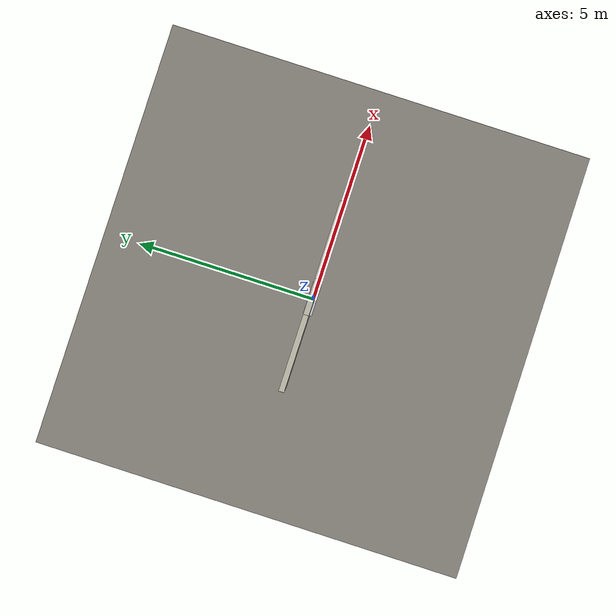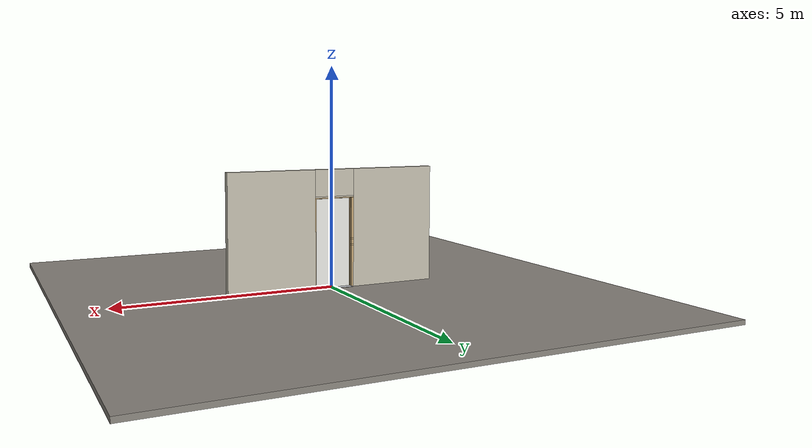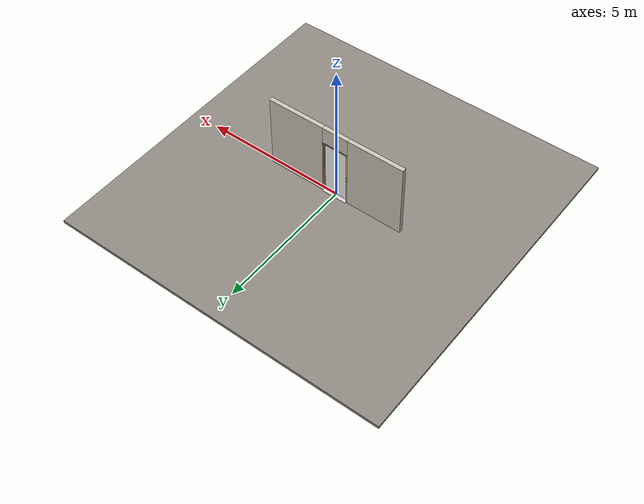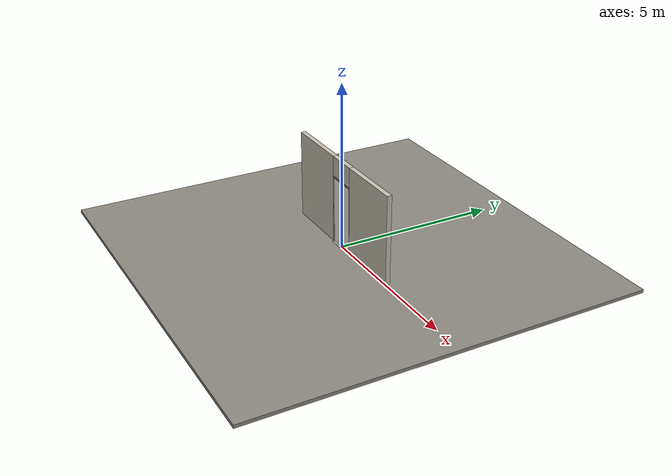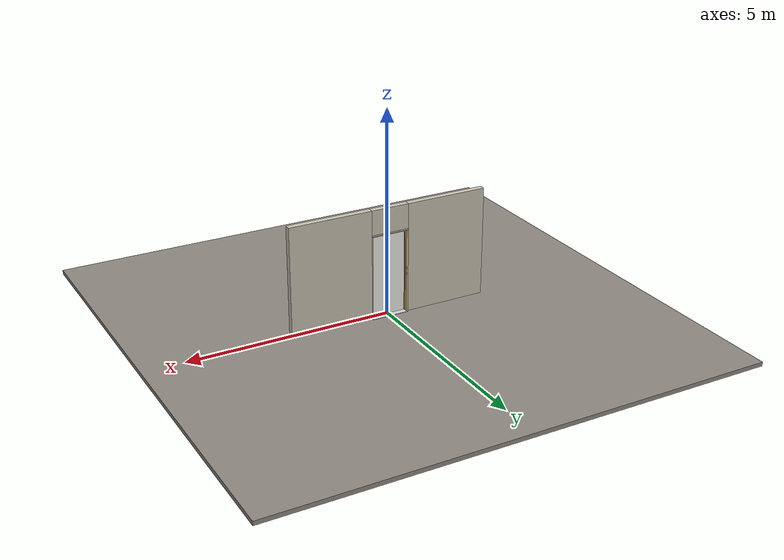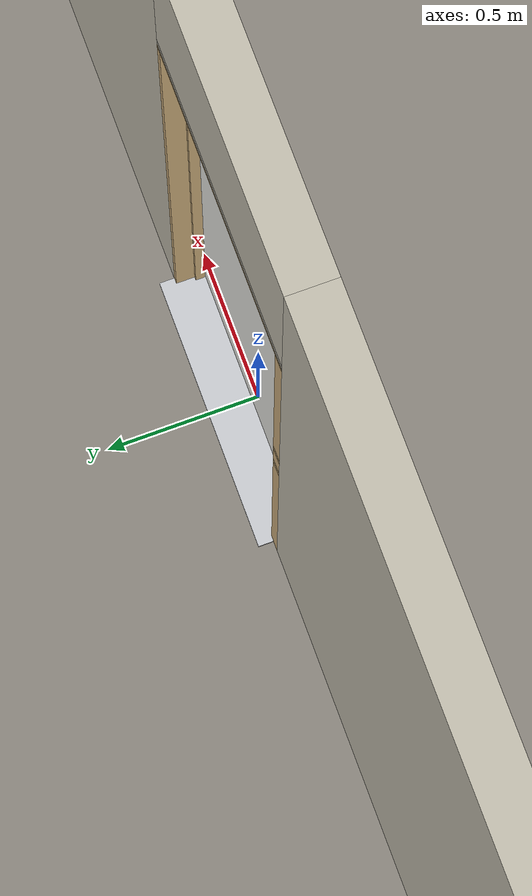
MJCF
<?xml version="1.0" ?>
<mujoco model="db0955_swing_single_minimal">
  <compiler angle="radian" meshdir="../../hardware" texturedir="../../textures" autolimits="true" inertiafromgeom="false"/>
  <option timestep="0.002" integrator="implicitfast" cone="elliptic" impratio="10" noslip_iterations="3">
    <flag multiccd="enable"/>
  </option>
  <size memory="16M"/>
  <default>
    <geom condim="4" solref="0.005 1" solimp="0.95 0.99 0.001"/>
    <joint solreflimit="0.005 1" solimplimit="0.95 0.99 0.001"/>
    <tendon solreflimit="0.005 1"/>
    <equality solref="0.002 1"/>
  </default>
  <visual>
    <headlight ambient="0.4 0.4 0.4" diffuse="0.7 0.7 0.7" specular="0.2 0.2 0.2"/>
    <quality shadowsize="4096"/>
    <map znear="0.01" zfar="60"/>
  </visual>
  <asset>
    <material name="mat_floor" rgba="0.55 0.53 0.5 1" specular="0.2" shininess="0.15" reflectance="0"/>
    <material name="mat_wall" rgba="0.78 0.76 0.7 1" specular="0.2" shininess="0.1" reflectance="0"/>
    <material name="mat_leaf" rgba="0.93 0.93 0.91 1" specular="0.2" shininess="0.6" reflectance="0"/>
    <material name="mat_leaf_brace" rgba="0.837 0.837 0.819 1" specular="0.2" shininess="0.2" reflectance="0"/>
    <material name="mat_hinge" rgba="0.65 0.66 0.68 1" specular="0.74" shininess="0.5" reflectance="0.36"/>
    <material name="mat_op_nickel_satin" rgba="0.72 0.7 0.66 1" specular="0.8" shininess="0.65" reflectance="0.4"/>
    <material name="mat_trim" rgba="0.85 0.66 0.3 1" specular="0.8" shininess="0.75" reflectance="0.4"/>
    <material name="mat_keypad" rgba="0.05 0.05 0.05 1" specular="0.38" shininess="0.3" reflectance="0.12"/>
    <material name="mat_key" rgba="0.85 0.85 0.82 1" specular="0.2" shininess="0.5" reflectance="0"/>
    <material name="mat_bolt" rgba="0.85 0.66 0.3 1" specular="0.8" shininess="0.75" reflectance="0.4"/>
    <material name="mat_deadbolt" rgba="0.85 0.66 0.3 1" specular="0.8" shininess="0.75" reflectance="0.4"/>
    <material name="mat_frame" rgba="0.82 0.7 0.5 1" specular="0.2" shininess="0.45" reflectance="0"/>
    <material name="mat_seal" rgba="0.1 0.1 0.1 1" specular="0.2" shininess="0.1" reflectance="0"/>
    <material name="mat_threshold" rgba="0.8 0.81 0.83 1" specular="0.8" shininess="0.6" reflectance="0.4"/>
    <material name="mat_kick" rgba="0.75 0.76 0.77 1" specular="0.8" shininess="0.65" reflectance="0.4"/>
    <material name="mat_peephole" rgba="0.85 0.66 0.3 1" specular="0.8" shininess="0.75" reflectance="0.4"/>
    <material name="mat_bumper_stop" rgba="0.08 0.08 0.08 1" specular="0.2" shininess="0.1" reflectance="0"/>
    <material name="mat_stop_base" rgba="0.9 0.9 0.92 1" specular="0.8" shininess="0.9" reflectance="0.4"/>
    <texture name="skybox" type="skybox" builtin="gradient" rgb1="0.6 0.7 0.85" rgb2="0.9 0.92 0.95" width="256" height="256"/>
  </asset>
  <worldbody>
    <light name="sun" pos="1.5 -2.5 4" dir="-0.3 0.5 -0.8" directional="true" diffuse="0.8 0.8 0.8" specular="0.3 0.3 0.3" castshadow="true"/>
    <light name="fill" pos="-1.5 2.5 3" dir="0.3 -0.5 -0.7" directional="true" diffuse="0.35 0.35 0.4" castshadow="false"/>
    <camera name="robot_view" pos="0 -2.498687 1.734312" xyaxes="1 0 0 0 0.26963 0.962964" fovy="52"/>
    <camera name="far_view" pos="0 2.585687 1.734312" xyaxes="-1 0 0 0 -0.26963 0.962964" fovy="52"/>
    <camera name="iso" pos="-1.932062 -2.091938 2.141063" xyaxes="0.741536 -0.670913 0 0.242917 0.268487 0.932151" fovy="46"/>
    <camera name="detail_handle" pos="-0.148 -0.7565 1.245" xyaxes="0.97561 0.219512 0 -0.070934 0.315262 0.94635" fovy="38"/>
    <geom name="floor" type="box" size="6 6 0.05" pos="0 0 -0.05" material="mat_floor" group="0" contype="1" conaffinity="1" friction="0.8 0.005 0.0001" density="2400"/>
    <geom name="wall_left" type="box" size="1.0075 0.0725 1.35" pos="-1.4925 0.0435 1.35" material="mat_wall" group="0" contype="1" conaffinity="1" friction="0.6 0.005 0.0001" density="800"/>
    <geom name="wall_right" type="box" size="1.0225 0.0725 1.35" pos="1.4775 0.0435 1.35" material="mat_wall" group="0" contype="1" conaffinity="1" friction="0.6 0.005 0.0001" density="800"/>
    <geom name="wall_header" type="box" size="0.47 0.0725 0.303" pos="-0.015 0.0435 2.397" material="mat_wall" group="0" contype="1" conaffinity="1" friction="0.6 0.005 0.0001" density="800"/>
    <geom name="jamb_hinge" type="box" size="0.0095 0.0725 1.0225" pos="0.4455 0.0435 1.0225" material="mat_frame" group="0" contype="1" conaffinity="1" friction="0.6 0.005 0.0001" density="400"/>
    <geom name="strike_965_wall_n" type="box" size="0.0245 0.054075 0.0167" pos="-0.4605 0.061925 0.965" material="mat_frame" group="0" contype="1" conaffinity="1" friction="0.6 0.005 0.0001" density="400"/>
    <geom name="strike_965_wall_p" type="box" size="0.0245 0.008 0.0167" pos="-0.4605 -0.01585 0.965" material="mat_frame" group="0" contype="1" conaffinity="1" friction="0.6 0.005 0.0001" density="400"/>
    <geom name="strike_965_ramp" type="box" size="0.0245 0.01649 0.0167" pos="-0.465136 -0.028673 0.965" quat="0.977148 0 0 -0.212558" material="mat_frame" group="0" contype="1" conaffinity="1" friction="0.12 0.005 0.0001" density="400"/>
    <geom name="strike_965_back" type="box" size="0.01615 0.00785 0.0167" pos="-0.46885 0 0.965" material="mat_frame" group="0" contype="1" conaffinity="1" friction="0.6 0.005 0.0001" density="400"/>
    <geom name="strike_1105_wall_n" type="box" size="0.0245 0.05325 0.0155" pos="-0.4605 0.06275 1.105" material="mat_frame" group="0" contype="1" conaffinity="1" friction="0.6 0.005 0.0001" density="400"/>
    <geom name="strike_1105_wall_p" type="box" size="0.0245 0.00975 0.0155" pos="-0.4605 -0.01925 1.105" material="mat_frame" group="0" contype="1" conaffinity="1" friction="0.6 0.005 0.0001" density="400"/>
    <geom name="strike_1105_back" type="box" size="0.0098 0.0095 0.0155" pos="-0.4752 0 1.105" material="mat_frame" group="0" contype="1" conaffinity="1" friction="0.6 0.005 0.0001" density="400"/>
    <geom name="jamb_strike_0" type="box" size="0.0245 0.0725 0.47415" pos="-0.4605 0.0435 0.47415" material="mat_frame" group="0" contype="1" conaffinity="1" friction="0.6 0.005 0.0001" density="400"/>
    <geom name="jamb_strike_1" type="box" size="0.0245 0.0725 0.0539" pos="-0.4605 0.0435 1.0356" material="mat_frame" group="0" contype="1" conaffinity="1" friction="0.6 0.005 0.0001" density="400"/>
    <geom name="jamb_strike_2" type="box" size="0.0245 0.0725 0.46225" pos="-0.4605 0.0435 1.58275" material="mat_frame" group="0" contype="1" conaffinity="1" friction="0.6 0.005 0.0001" density="400"/>
    <geom name="jamb_head" type="box" size="0.47 0.0725 0.0095" pos="-0.015 0.0435 2.0545" material="mat_frame" group="0" contype="1" conaffinity="1" friction="0.6 0.005 0.0001" density="400"/>
    <geom name="head_stud" type="box" size="0.47 0.0725 0.015" pos="-0.015 0.0435 2.079" material="mat_wall" group="0" contype="1" conaffinity="1" friction="0.6 0.005 0.0001" density="500"/>
    <geom name="stop_hinge" type="box" size="0.0055 0.016 1.0225" pos="0.4305 0.0385 1.0225" material="mat_frame" group="0" contype="1" conaffinity="1" friction="0.6 0.005 0.0001" density="400"/>
    <geom name="stop_strike" type="box" size="0.0055 0.016 1.0225" pos="-0.4305 0.0385 1.0225" material="mat_frame" group="0" contype="1" conaffinity="1" friction="0.6 0.005 0.0001" density="400"/>
    <geom name="stop_head" type="box" size="0.436 0.016 0.0055" pos="0 0.0385 2.0395" material="mat_frame" group="0" contype="1" conaffinity="1" friction="0.6 0.005 0.0001" density="400"/>
    <geom name="threshold" type="box" size="0.455 0.1225 0.004" pos="0 0.0435 0.004" material="mat_threshold" group="0" contype="1" conaffinity="1" friction="0.6 0.005 0.0001" density="2700"/>
    <site name="approach_point" pos="0 -1.5 0" quat="1 0 0 0" size="0.05" rgba="0.2 0.9 0.2 0.5" group="4"/>
    <site name="goal_point" pos="0 1.5 0" quat="1 0 0 0" size="0.05" rgba="0.2 0.9 0.2 0.5" group="4"/>
    <site name="door_plane_center" pos="0 0 1.0225" quat="1 0 0 0" size="0.02" rgba="0.2 0.9 0.2 0.5" group="4"/>
    <body name="leaf" pos="0.436 0 0">
      <inertial pos="-0.435 0 1.025" mass="23.827729" quat="-0.5 0.5 0.5 0.5" diaginertia="1.486119555 8.202616185 9.681047326"/>
      <joint name="leaf_hinge" type="hinge" axis="0 0 1" pos="-0.003 -0.029 0" limited="true" range="0 1.570796" solreflimit="0.02 1" damping="0.254501" frictionloss="1.378515" armature="0.02"/>
      <geom name="leaf_slab" type="box" size="0.432 0.022 1.016" pos="-0.435 0 1.025" material="mat_leaf" group="0" contype="1" conaffinity="1" friction="0.4 0.005 0.0001" density="1"/>
      <site name="leaf_edge_mid" pos="-0.867 0 1.016" quat="1 0 0 0" size="0.02" rgba="0.2 0.9 0.2 0.5" group="4"/>
      <body name="leaf_handle" pos="-0.797 0 0.965">
        <inertial pos="0 0 0" mass="0.01" quat="1 0 0 0" diaginertia="0.000001 0.000001 0.000001"/>
        <joint name="leaf_handle_hinge" type="hinge" axis="0 1 0" limited="true" range="0 0.87" damping="0.141426" frictionloss="0.048" stiffness="0.5" springref="-0.5" armature="0.01"/>
      </body>
      <body name="leaf_latch_bolt" pos="-0.867 0 0.965">
        <inertial pos="0.00865 0 0" mass="0.041419" quat="0.92388 0.382683 0 0" diaginertia="0.000000798 0.000005598 0.000005598"/>
        <joint name="leaf_latch_bolt_slide" type="slide" axis="1 0 0" limited="true" range="0 0.0127" damping="2" frictionloss="0.3" stiffness="300" springref="-0.008333" armature="0.1"/>
        <geom name="leaf_latch_bolt_capsule" type="capsule" size="0.00635 0.015" pos="0.00865 0 0" quat="0.707107 0 -0.707107 0" material="mat_bolt" group="0" contype="1" conaffinity="1" friction="0.2 0.005 0.0001" density="8500"/>
      </body>
    </body>
  </worldbody>
  <tendon>
    <fixed name="leaf_latch_bolt_coupling" limited="true" range="0 10">
      <joint joint="leaf_latch_bolt_slide" coef="1"/>
      <joint joint="leaf_handle_hinge" coef="-0.015679"/>
    </fixed>
  </tendon>
  <sensor>
    <jointpos name="leaf_hinge_pos" joint="leaf_hinge"/>
    <jointvel name="leaf_hinge_vel" joint="leaf_hinge"/>
    <jointpos name="leaf_handle_hinge_pos" joint="leaf_handle_hinge"/>
    <jointvel name="leaf_handle_hinge_vel" joint="leaf_handle_hinge"/>
    <jointpos name="leaf_latch_bolt_slide_pos" joint="leaf_latch_bolt_slide"/>
    <jointvel name="leaf_latch_bolt_slide_vel" joint="leaf_latch_bolt_slide"/>
  </sensor>
</mujoco>
